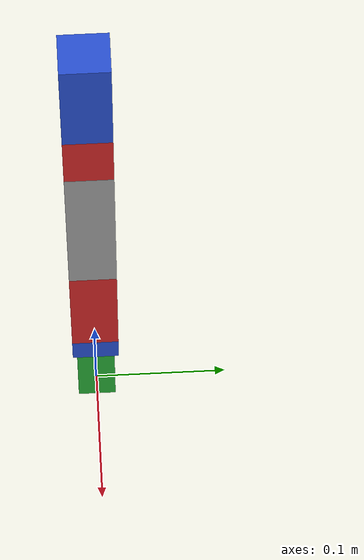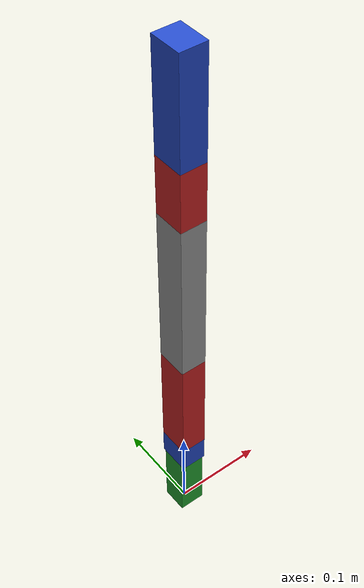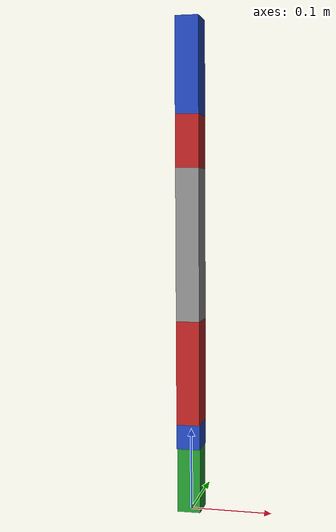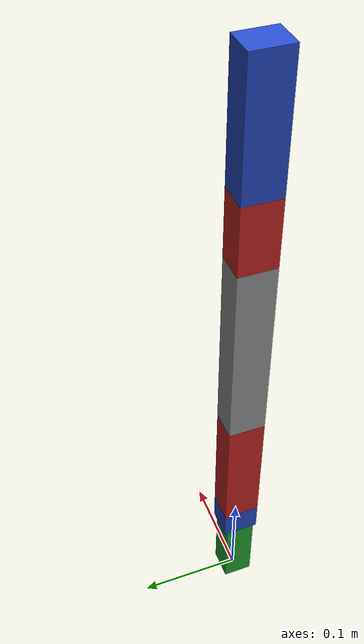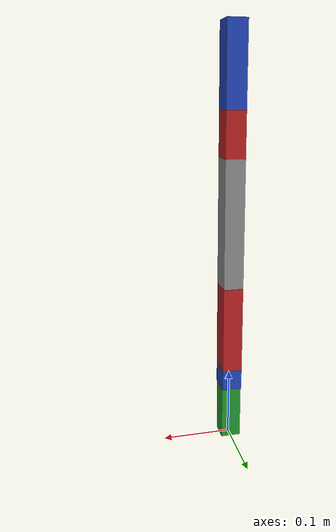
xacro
<?xml version="1.0"?>
<robot xmlns:xacro="http://wiki.ros.org/xacro" name="guardian_manipulator">
  <!-- paramters to be set from the launch file -->
  <xacro:arg name="lower_limit" default="${str(-pi/2)}"/>
  <xacro:arg name="upper_limit" default="${str(pi/2)}"/>
  <xacro:arg name="sim_gazebo_classic" default="false"/>
  <xacro:arg name="simulation_controllers" default=""/>

  <!-- Import r6bot macro -->
  <xacro:include filename="$(find guardian_description)/urdf/manipulator_macros.xacro"/>

  <!-- create link fixed to the "world" -->
  <link name="world"/>
  <xacro:manipulator_description
    lower_joint_limit="$(arg lower_limit)"
    upper_joint_limit="$(arg upper_limit)"/>

  <!-- ros2_control -->
  <xacro:include filename="$(find guardian_description)/ros2_control/manipulator.ros2_control.xacro"/>

  <xacro:guardian_manipulator_ros2_control
    lower_joint_limit="$(arg lower_limit)"
    upper_joint_limit="$(arg upper_limit)"
    sim_gazebo_classic="$(arg sim_gazebo_classic)"/>

  <xacro:if value="$(arg sim_gazebo_classic)">
    <gazebo>
      <plugin filename="libgazebo_ros2_control.so" name="gazebo_ros2_control">
        <parameters>$(arg simulation_controllers)</parameters>
      </plugin>
    </gazebo>
  </xacro:if>

</robot>

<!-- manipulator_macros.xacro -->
<robot xmlns:xacro="http://www.ros.org/wiki/xacro">

  <xacro:macro name="manipulator_description" params="
               lower_joint_limit:=^|${-pi/2}
               upper_joint_limit:=^|${pi/2}"
  >

  <!-- helper macro -->
  <xacro:include filename="$(find guardian_description)/urdf/utils/create_link.xacro"/>

  <!-- Links -->
  <xacro:property name="link0_len" value="0.0793" />
  <xacro:property name="link1_len" value="0.03" />
  <xacro:property name="link2_len" value="0.127" />
  <xacro:property name="link3_len" value="0.18415" />
  <xacro:property name="link4_len" value="0.0635" />
  <xacro:property name="link5_len" value="0.1143" />

  <xacro:create_link
    link_name="base_link"
    color="green"
    xyz_offset="0 0 ${link0_len/2}"
    rpy_offset="0 0 0"
    z="${link0_len}"
    x="0.0285"
    y="0.0285"
  />

  <xacro:create_link
    link_name="link_1"
    color="blue"
    xyz_offset="0 0 ${link1_len/2}"
    rpy_offset="0 0 0"
    z="${link1_len}"
    x="0.0285"
    y="0.035"
  />

  <xacro:create_link
    link_name="link_2"
    color="red"
    xyz_offset="0 0 ${link2_len/2}"
    rpy_offset="0 0 0"
    z="${link2_len}"
    x="0.0285"
    y="0.035"
  />

  <xacro:create_link
    link_name="link_3"
    color="grey"
    xyz_offset="0 0 ${link3_len/2}"
    rpy_offset="0 0 0"
    z="${link3_len}"
    x="0.0285"
    y="0.035"
  />

  <xacro:create_link
    link_name="link_4"
    color="red"
    xyz_offset="0 0 ${link4_len/2}"
    rpy_offset="0 0 0"
    z="${link4_len}"
    x="0.0285"
    y="0.035"
  />

  <xacro:create_link
    link_name="link_5"
    color="blue"
    xyz_offset="0 0 ${link5_len/2}"
    rpy_offset="0 0 0"
    z="${link5_len}"
    x="0.0285"
    y="0.035"
  />

  <!-- Joints -->
  <joint name="base_joint" type="fixed">
    <parent link="world"/>
    <child link="base_link"/>
    <origin xyz="0 0 0" rpy="0 0 0"/>
    <axis xyz="0 0 1"/>
  </joint>

  <joint name="joint_1" type="revolute">
    <parent link="base_link"/>
    <child link="link_1"/>
    <origin xyz="0 0 ${link0_len}" rpy="0 0 0"/>
    <axis xyz="0 0 1"/>
    <limit effort="1000.0" lower="${lower_joint_limit}" upper="${upper_joint_limit}" velocity="2.5"/>
  </joint>

  <joint name="joint_2" type="revolute">
    <parent link="link_1"/>
    <child link="link_2"/>
    <origin xyz="0 0 ${link1_len}" rpy="0 0 0"/>
    <axis xyz="0 1 0"/>
    <limit effort="1000.0" lower="${lower_joint_limit}" upper="${upper_joint_limit}" velocity="2.5"/>
  </joint>

  <joint name="joint_3" type="revolute">
    <parent link="link_2"/>
    <child link="link_3"/>
    <origin xyz="0 0 ${link2_len}" rpy="0 0 0"/>
    <axis xyz="0 1 0"/>
    <limit effort="1000.0" lower="${lower_joint_limit}" upper="${upper_joint_limit}" velocity="2.5"/>
  </joint>

  <joint name="joint_4" type="revolute">
    <parent link="link_3"/>
    <child link="link_4"/>
    <origin xyz="0 0 ${link3_len}" rpy="0 0 0"/>
    <axis xyz="0 1 0"/>
    <limit effort="1000.0" lower="${lower_joint_limit}" upper="${upper_joint_limit}" velocity="2.5"/>
  </joint>

  <joint name="joint_5" type="revolute">
    <parent link="link_4"/>
    <child link="link_5"/>
    <origin xyz="0 0 ${link4_len}" rpy="0 0 0"/>
    <axis xyz="0 0 1"/>
    <limit effort="1000.0" lower="${lower_joint_limit}" upper="${upper_joint_limit}" velocity="2.5"/>
  </joint>

</xacro:macro>

</robot>

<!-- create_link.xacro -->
<robot xmlns:xacro="http://wiki.ros.org/xacro">

  <!-- ============= Materials & Intertias =============  -->
  <xacro:include filename="$(find guardian_description)/urdf/utils/inertial_macros.xacro"/>
  <xacro:include filename="$(find guardian_description)/urdf/utils/materials_macros.xacro"/>

  <xacro:macro name="create_link" params="
        link_name
        color
        xyz_offset
        rpy_offset
        x y z">
    <link name="${link_name}">
      <visual>
        <origin xyz="${xyz_offset}" rpy="${rpy_offset}"/>
        <geometry>
          <box size="${x} ${y} ${z}"/>
        </geometry>
        <material name="${color}"/>
      </visual>
      <collision>
        <origin xyz="${xyz_offset}" rpy="${rpy_offset}"/>
        <geometry>
          <box size="${x} ${y} ${z}"/>
        </geometry>
      </collision>
      <xacro:inertial_box mass="1.0" x="${x}" y="${y}" z="${z}">
        <origin xyz="${xyz_offset}" rpy="${rpy_offset}"/>
      </xacro:inertial_box>
    </link>
  </xacro:macro>
</robot>

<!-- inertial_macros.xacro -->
<robot xmlns:xacro="http://www.ros.org/wiki/xacro" >

    <!-- Specify some standard inertial calculations https://en.wikipedia.org/wiki/List_of_moments_of_inertia -->
    <!-- These make use of xacro's mathematical functionality -->
    <xacro:macro name="inertial_sphere" params="mass radius *origin">
        <inertial>
            <xacro:insert_block name="origin"/>
            <mass value="${mass}" />
            <inertia ixx="${(2/5) * mass * (radius*radius)}" ixy="0.0" ixz="0.0"
                    iyy="${(2/5) * mass * (radius*radius)}" iyz="0.0"
                    izz="${(2/5) * mass * (radius*radius)}" />
        </inertial>
    </xacro:macro>

    <xacro:macro name="inertial_box" params="mass x y z *origin">
        <inertial>
            <xacro:insert_block name="origin"/>
            <mass value="${mass}" />
            <inertia ixx="${(1/12) * mass * (y*y+z*z)}" ixy="0.0" ixz="0.0"
                    iyy="${(1/12) * mass * (x*x+z*z)}" iyz="0.0"
                    izz="${(1/12) * mass * (x*x+y*y)}" />
        </inertial>
    </xacro:macro>

    <xacro:macro name="inertial_cylinder" params="mass length radius *origin">
        <inertial>
            <xacro:insert_block name="origin"/>
            <mass value="${mass}" />
            <inertia ixx="${(1/12) * mass * (3*radius*radius + length*length)}" ixy="0.0" ixz="0.0"
                    iyy="${(1/12) * mass * (3*radius*radius + length*length)}" iyz="0.0"
                    izz="${(1/2) * mass * (radius*radius)}" />
        </inertial>
    </xacro:macro>

</robot>
